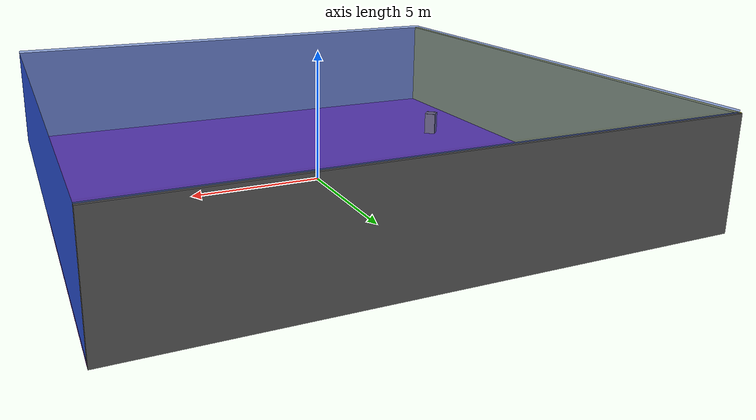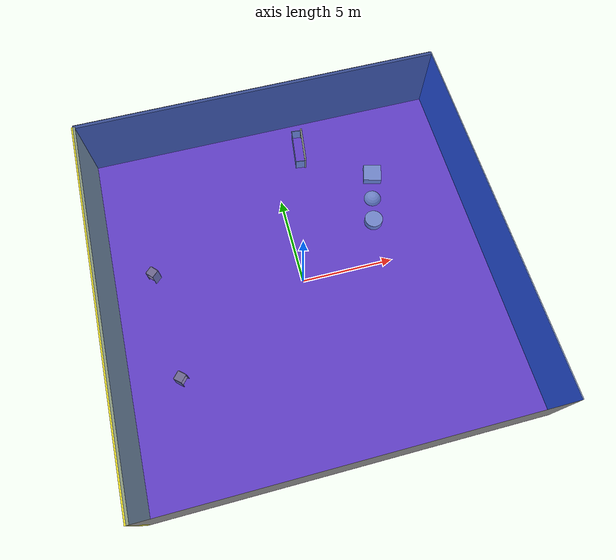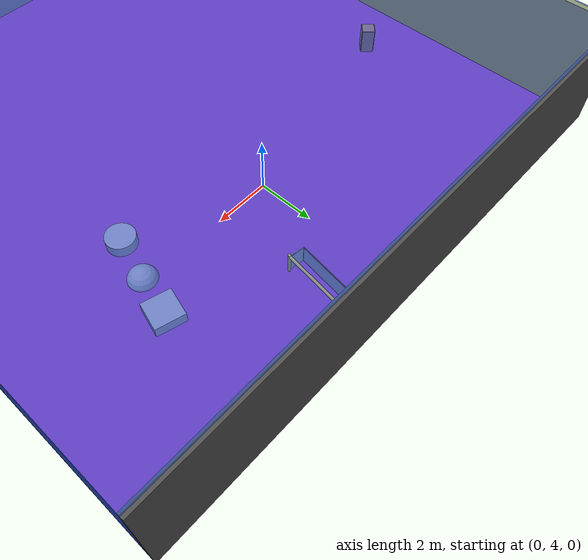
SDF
<sdf version="1.4">
 <world name="default">
  <physics type="ode">
   <max_step_size>0.001</max_step_size>
   <real_time_factor>1</real_time_factor>
   <real_time_update_rate>1000</real_time_update_rate>
   <gravity>0 0 -9.8</gravity>
  </physics>
  <scene><ambient>0.4 0.4 0.4 1</ambient><background>0.7 0.7 0.7 1</background><shadows>1</shadows></scene>
  <model name="Surrounding">
   <static>1</static>
   <link name="Ceiling">
    <collision name="Ceiling_Collision"><geometry><box><size>20 20 0.1</size></box></geometry></collision>
    <visual name="Ceiling_Visual">
     <geometry><box><size>20 20 0.1</size></box></geometry>
     <material>
      <script><uri>file://media/materials/scripts/gazebo.material</uri><name>Gazebo/BlueTransparent</name></script>
     </material>
    </visual>
    <pose>0 0 4.05 0 0 0</pose>
   </link>
   <link name="Wall_South">
    <collision name="Wall_South_Collision">
     <geometry><box><size>20 0 4</size></box></geometry>
     <pose>0 0 2 0 -0 0</pose>
    </collision>
    <visual name="Wall_South_Visual">
     <pose>0 0 2 0 -0 0</pose>
     <geometry><box><size>20 0 4</size></box></geometry>
     <material>
      <script><uri>file://media/materials/scripts/gazebo.material</uri><name>Gazebo/GreyGradientSky</name></script>
     </material>
    </visual>
    <velocity_decay><linear>0</linear><angular>0</angular></velocity_decay>
    <pose>0 -10 0 0 -0 0</pose>
   </link>
   <link name="Wall_East">
    <collision name="Wall_21_Collision">
     <geometry><box><size>20 0 4</size></box></geometry>
     <pose>0 0 2 0 -0 0</pose>
    </collision>
    <visual name="Wall_21_Visual">
     <pose>0 0 2 0 -0 0</pose>
     <geometry><box><size>20 0 4</size></box></geometry>
     <material>
      <script><uri>file://media/materials/scripts/gazebo.material</uri><name>Gazebo/BlueLaser</name></script>
     </material>
    </visual>
    <velocity_decay><linear>0</linear><angular>0</angular></velocity_decay>
    <pose>10 0 0 0 -0 1.5708</pose>
   </link>
   <link name="Wall_North">
    <collision name="Wall_22_Collision">
     <geometry><box><size>20 0.2 4</size></box></geometry>
     <pose>0 0 2 0 -0 0</pose>
    </collision>
    <visual name="Wall_22_Visual">
     <pose>0 0 2 0 -0 0</pose>
     <geometry><box><size>20 0.2 4</size></box></geometry>
     <material>
      <script><uri>file://media/materials/scripts/gazebo.material</uri><name>Gazebo/DarkGrey</name></script>
     </material>
    </visual>
    <velocity_decay><linear>0</linear><angular>0</angular></velocity_decay>
    <pose>0 10 0 0 -0 0</pose>
   </link>
   <link name="Wall_West">
    <collision name="Wall_23_Collision">
     <geometry><box><size>20 0.2 4</size></box></geometry>
     <pose>0 0 2 0 -0 0</pose>
    </collision>
    <visual name="Wall_23_Visual">
     <pose>0 0 2 0 -0 0</pose>
     <geometry><box><size>20 0.2 4</size></box></geometry>
     <material>
      <script><uri>file://media/materials/scripts/gazebo.material</uri><name>Gazebo/Yellow</name></script>
     </material>
    </visual>
    <velocity_decay><linear>0</linear><angular>0</angular></velocity_decay>
    <pose>-10 0 0 0 0 -1.5708</pose>
   </link>
   <link name="Ground_link">
    <collision name="collision">
     <pose>0 0 .05 0 -0 0</pose>
     <geometry><box><size>20 20 0.1</size></box></geometry>
    </collision>
    <visual name="visual">
     <pose>0 0 .05 0 -0 0</pose>
     <geometry><box><size>20 20 0.1</size></box></geometry>
     <material>
      <script><uri>file://media/materials/scripts/gazebo.material</uri><name>Gazebo/Purple</name></script>
     </material>
    </visual>
   </link>
   <static>1</static>
  </model>
  <spherical_coordinates>
   <surface_model>EARTH_WGS84</surface_model>
   <latitude_deg>0</latitude_deg>
   <longitude_deg>0</longitude_deg>
   <elevation>0</elevation>
   <heading_deg>0</heading_deg>
  </spherical_coordinates>
  <light name="lightball_0" type="diffuse">
   <diffuse>0.8 0.8 0.8 1</diffuse>
   <specular>0.2 0.2 0.2 1</specular>
   <attenuation>
    <range>100</range>
    <constant>0.7</constant>
    <linear>0.01</linear>
    <quadratic>0.001</quadratic>
   </attenuation>
   <direction>-0.5 0.1 -0.9</direction>
   <pose>6.40799855965 -1.87250810696 2.8022273068 0 0 0</pose>
  </light>
  <light name="lightball_1" type="diffuse">
   <diffuse>0.8 0.8 0.8 1</diffuse>
   <specular>0.2 0.2 0.2 1</specular>
   <attenuation>
    <range>100</range>
    <constant>0.7</constant>
    <linear>0.01</linear>
    <quadratic>0.001</quadratic>
   </attenuation>
   <direction>-0.5 0.1 -0.9</direction>
   <pose>0.434276459269 -1.74062192423 0.556218603178 0 0 0</pose>
  </light>
  <light name="lightball_2" type="diffuse">
   <diffuse>0.8 0.8 0.8 1</diffuse>
   <specular>0.2 0.2 0.2 1</specular>
   <attenuation>
    <range>100</range>
    <constant>0.7</constant>
    <linear>0.01</linear>
    <quadratic>0.001</quadratic>
   </attenuation>
   <direction>-0.5 0.1 -0.9</direction>
   <pose>9.44449699536 -8.03685874879 0.79028023474 0 0 0</pose>
  </light>
  <light name="lightball_3" type="diffuse">
   <diffuse>0.8 0.8 0.8 1</diffuse>
   <specular>0.2 0.2 0.2 1</specular>
   <attenuation>
    <range>100</range>
    <constant>0.7</constant>
    <linear>0.01</linear>
    <quadratic>0.001</quadratic>
   </attenuation>
   <direction>-0.5 0.1 -0.9</direction>
   <pose>-3.32795120085 -7.51751231352 2.16251643777 0 0 0</pose>
  </light>
  <light name="lightball_4" type="diffuse">
   <diffuse>0.8 0.8 0.8 1</diffuse>
   <specular>0.2 0.2 0.2 1</specular>
   <attenuation>
    <range>100</range>
    <constant>0.7</constant>
    <linear>0.01</linear>
    <quadratic>0.001</quadratic>
   </attenuation>
   <direction>-0.5 0.1 -0.9</direction>
   <pose>-9.63994282388 -9.92798983691 2.1685643911 0 0 0</pose>
  </light>
  <light name="lightball_5" type="diffuse">
   <diffuse>0.8 0.8 0.8 1</diffuse>
   <specular>0.2 0.2 0.2 1</specular>
   <attenuation>
    <range>100</range>
    <constant>0.7</constant>
    <linear>0.01</linear>
    <quadratic>0.001</quadratic>
   </attenuation>
   <direction>-0.5 0.1 -0.9</direction>
   <pose>7.25663661315 5.57341759327 1.68129184924 0 0 0</pose>
  </light>
  <include><uri>model://cabinet</uri><pose>-7.27751840507 -3.76287788013 0 0 0 2.42053856409</pose></include>
  <include><uri>model://cabinet</uri><pose>-7.73866950969 2.12707421945 0 0 0 0.755677179076</pose></include>
  <include>
   <uri>model://robocup_3Dsim_goal</uri>
   <pose>2.05900813478 7.95762225243 0 0 0 3.01309928512</pose>
  </include>
  <include>
   <uri>model://textured_shapes</uri>
   <pose>5.10726135588 3.89151196507 0 0 0 2.86987941967</pose>
  </include>
 </world>
</sdf>

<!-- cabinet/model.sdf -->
<sdf version="1.5">
  <model name="cabinet">
    <static>true</static>
    <link name="cabinet_bottom_plate">
      <inertial>
        <pose>0 0 -1 0 0 0</pose>
        <inertia>
          <ixx>2.050000</ixx>
          <ixy>0</ixy>
          <ixz>0</ixz>
          <iyy>2.050000</iyy>
          <iyz>0</iyz>
          <izz>2.050000</izz>
        </inertia>
        <mass>25.000000</mass>
      </inertial>
      <collision name="cabinet_bottom_plate_geom">
        <pose>0 0 0.010000 0 0 0</pose>
        <geometry>
          <box>
            <size>0.450000 0.450000 0.020000</size>
          </box>
        </geometry>
      </collision>
      <visual name="cabinet_bottom_plate_geom_visual">
        <pose>0 0 0.010000 0 0 0</pose>
        <geometry>
          <box>
            <size>0.450000 0.450000 0.020000</size>
          </box>
        </geometry>
        <material>
          <script>
            <uri>model://media/materials/scripts/gazebo.material</uri>
            <name>Gazebo/Wood</name>
          </script>
        </material>
      </visual>
      <collision name="cabinet_bottom_plate_geom_cabinet_back_plate">
        <pose>0.235000 0 0.510000 0 0 0</pose>
        <geometry>
          <box>
            <size>0.020000 0.450000 1.020000</size>
          </box>
        </geometry>
      </collision>
      <visual name="cabinet_bottom_plate_geom_cabinet_back_plate_visual">
        <pose>0.235000 0 0.510000 0 0 0</pose>
        <geometry>
          <box>
            <size>0.020000 0.450000 1.020000</size>
          </box>
        </geometry>
        <material>
          <script>
            <uri>model://media/materials/scripts/gazebo.material</uri>
            <name>Gazebo/Wood</name>
          </script>
        </material>
      </visual>
      <collision name="cabinet_bottom_plate_geom_cabinet_left_plate">
        <pose>0 0.235000 0.510000 0 0 0</pose>
        <geometry>
          <box>
            <size>0.450000 0.020000 1.020000</size>
          </box>
        </geometry>
      </collision>
      <visual name="cabinet_bottom_plate_geom_cabinet_left_plate_visual">
        <pose>0 0.235000 0.510000 0 0 0</pose>
        <geometry>
          <box>
            <size>0.450000 0.020000 1.020000</size>
          </box>
        </geometry>
        <material>
          <script>
            <uri>model://media/materials/scripts/gazebo.material</uri>
            <name>Gazebo/Wood</name>
          </script>
        </material>
      </visual>
      <collision name="cabinet_bottom_plate_geom_cabinet_middle_plate">
        <pose>0 0 0.510000 0 0 0</pose>
        <geometry>
          <box>
            <size>0.450000 0.450000 0.020000</size>
          </box>
        </geometry>
      </collision>
      <visual name="cabinet_bottom_plate_geom_cabinet_middle_plate_visual">
        <pose>0 0 0.510000 0 0 0</pose>
        <geometry>
          <box>
            <size>0.450000 0.450000 0.020000</size>
          </box>
        </geometry>
        <material>
          <script>
            <uri>model://media/materials/scripts/gazebo.material</uri>
            <name>Gazebo/Wood</name>
          </script>
        </material>
      </visual>
      <collision name="cabinet_bottom_plate_geom_cabinet_right_plate">
        <pose>0 -0.235000 0.510000 0 0 0</pose>
        <geometry>
          <box>
            <size>0.450000 0.020000 1.020000</size>
          </box>
        </geometry>
      </collision>
      <visual name="cabinet_bottom_plate_geom_cabinet_right_plate_visual">
        <pose>0 -0.235000 0.510000 0 0 0</pose>
        <geometry>
          <box>
            <size>0.450000 0.020000 1.020000</size>
          </box>
        </geometry>
        <material>
          <script>
            <uri>model://media/materials/scripts/gazebo.material</uri>
            <name>Gazebo/Wood</name>
          </script>
        </material>
      </visual>
      <collision name="cabinet_bottom_plate_geom_cabinet_top_plate">
        <pose>0 0 1.010000 0 0 0</pose>
        <geometry>
          <box>
            <size>0.450000 0.450000 0.020000</size>
          </box>
        </geometry>
      </collision>
      <visual name="cabinet_bottom_plate_geom_cabinet_top_plate_visual">
        <pose>0 0 1.010000 0 0 0</pose>
        <geometry>
          <box>
            <size>0.450000 0.450000 0.020000</size>
          </box>
        </geometry>
        <material>
          <script>
            <uri>model://media/materials/scripts/gazebo.material</uri>
            <name>Gazebo/Wood</name>
          </script>
        </material>
      </visual>
    </link>
  </model>
</sdf>

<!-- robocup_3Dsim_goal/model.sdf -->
<sdf version="1.5">
  <model name="robocup_3d_goal">
    <static>true</static>
    <link name="left_post">
      <pose>0 1.05 0.45 0 0 0</pose>
      <collision name="collision">
        <geometry>
          <cylinder>
            <radius>0.05</radius>
            <length>0.9</length>
          </cylinder>
        </geometry>
      </collision>
      <visual name="visual">
        <geometry>
          <cylinder>
            <radius>0.05</radius>
            <length>0.9</length>
          </cylinder>
        </geometry>
        <material>
          <script>
            <uri>file://media/materials/scripts/gazebo.material</uri>
            <name>Gazebo/ZincYellow</name>
          </script>
        </material>
      </visual>
    </link>
    <link name="left_support_horiz_lower">
      <pose>0.30 1.05 0.01 0 0 0</pose>
      <collision name="collision">
        <geometry>
          <box>
            <size>0.50 0.02 0.02</size>
          </box>
        </geometry>
      </collision>
      <visual name="visual">
        <geometry>
          <box>
            <size>0.50 0.02 0.02</size>
          </box>
        </geometry>
        <material>
          <script>
            <uri>file://media/materials/scripts/gazebo.material</uri>
            <name>Gazebo/White</name>
          </script>
        </material>
      </visual>
    </link>
    <link name="left_support_horiz_upper">
      <pose>0.30 1.05 0.79 0 0 0</pose>
      <collision name="collision">
        <geometry>
          <box>
            <size>0.50 0.02 0.02</size>
          </box>
        </geometry>
      </collision>
      <visual name="visual">
        <geometry>
          <box>
            <size>0.50 0.02 0.02</size>
          </box>
        </geometry>
        <material>
          <script>
            <uri>file://media/materials/scripts/gazebo.material</uri>
            <name>Gazebo/White</name>
          </script>
        </material>
      </visual>
    </link>
    <link name="left_support_vertical">
      <pose>0.56 1.05 0.4 0 1.5708 0</pose>
      <collision name="collision">
        <geometry>
          <box>
            <size>0.80 0.02 0.02</size>
          </box>
        </geometry>
      </collision>
      <visual name="visual">
        <geometry>
          <box>
            <size>0.80 0.02 0.02</size>
          </box>
        </geometry>
        <material>
          <script>
            <uri>file://media/materials/scripts/gazebo.material</uri>
            <name>Gazebo/White</name>
          </script>
        </material>
      </visual>
    </link>
    <link name="right_support_horiz_lower">
      <pose>0.30 -1.05 0.01 0 0 0</pose>
      <collision name="collision">
        <geometry>
          <box>
            <size>0.50 0.02 0.02</size>
          </box>
        </geometry>
      </collision>
      <visual name="visual">
        <geometry>
          <box>
            <size>0.50 0.02 0.02</size>
          </box>
        </geometry>
        <material>
          <script>
            <uri>file://media/materials/scripts/gazebo.material</uri>
            <name>Gazebo/White</name>
          </script>
        </material>
      </visual>
    </link>
    <link name="right_support_horiz_upper">
      <pose>0.30 -1.05 0.79 0 0 0</pose>
      <collision name="collision">
        <geometry>
          <box>
            <size>0.50 0.02 0.02</size>
          </box>
        </geometry>
      </collision>
      <visual name="visual">
        <geometry>
          <box>
            <size>0.50 0.02 0.02</size>
          </box>
        </geometry>
        <material>
          <script>
            <uri>file://media/materials/scripts/gazebo.material</uri>
            <name>Gazebo/White</name>
          </script>
        </material>
      </visual>
    </link>
    <link name="right_support_vertical">
      <pose>0.56 -1.05 0.4 0 1.5708 0</pose>
      <collision name="collision">
        <geometry>
          <box>
            <size>0.80 0.02 0.02</size>
          </box>
        </geometry>
      </collision>
      <visual name="visual">
        <geometry>
          <box>
            <size>0.80 0.02 0.02</size>
          </box>
        </geometry>
        <material>
          <script>
            <uri>file://media/materials/scripts/gazebo.material</uri>
            <name>Gazebo/White</name>
          </script>
        </material>
      </visual>
    </link>
    <link name="center_support_horiz_lower">
      <pose>0.56 0 0.01 0 1.5708 0</pose>
      <collision name="collision">
        <geometry>
          <box>
            <size>0.02 2.08 0.02</size>
          </box>
        </geometry>
      </collision>
      <visual name="visual">
        <geometry>
          <box>
            <size>0.02 2.08 0.02</size>
          </box>
        </geometry>
        <material>
          <script>
            <uri>file://media/materials/scripts/gazebo.material</uri>
            <name>Gazebo/White</name>
          </script>
        </material>
      </visual>
    </link>
    <link name="center_support_horiz_upper">
      <pose>0.56 0 0.79 0 1.5708 0</pose>
      <collision name="collision">
        <geometry>
          <box>
            <size>0.02 2.08 0.02</size>
          </box>
        </geometry>
      </collision>
      <visual name="visual">
        <geometry>
          <box>
            <size>0.02 2.08 0.02</size>
          </box>
        </geometry>
        <material>
          <script>
            <uri>file://media/materials/scripts/gazebo.material</uri>
            <name>Gazebo/White</name>
          </script>
        </material>
      </visual>
    </link>
    <link name="right_post">
      <pose>0 -1.05 0.45 0 0 0</pose>
      <collision name="collision">
        <geometry>
          <cylinder>
            <radius>0.05</radius>
            <length>0.9</length>
          </cylinder>
        </geometry>
      </collision>
      <visual name="visual">
        <geometry>
          <cylinder>
            <radius>0.05</radius>
            <length>0.9</length>
          </cylinder>
        </geometry>
        <material>
          <script>
            <uri>file://media/materials/scripts/gazebo.material</uri>
            <name>Gazebo/ZincYellow</name>
          </script>
        </material>
      </visual>
    </link>
    <link name="crossbar">
      <pose>0 0 0.85 1.57 1.57 0</pose>
      <collision name="collision">
        <geometry>
          <cylinder>
            <radius>0.05</radius>
            <length>2.0</length>
          </cylinder>
        </geometry>
      </collision>
      <visual name="visual">
        <geometry>
          <cylinder>
            <radius>0.05</radius>
            <length>2.0</length>
          </cylinder>
        </geometry>
        <material>
          <script>
            <uri>file://media/materials/scripts/gazebo.material</uri>
            <name>Gazebo/ZincYellow</name>
          </script>
        </material>
      </visual>
    </link>
    <link name="center_net">
      <pose>0.56 0 0.40 0 0 0</pose>
      <collision name="collision">
        <geometry>
          <box>
            <size>0.01 2.1 0.80</size>
          </box>
        </geometry>
      </collision>
      <visual name="visual">
        <geometry>
          <box>
            <size>0.01 2.1 0.80</size>
          </box>
        </geometry>
        <material>
          <script>
            <uri>model://../model_source/models/robocup09_spl_field/materials/scripts/</uri>
            <uri>model://../model_source/models/robocup09_spl_field/materials/textures/</uri>
            <name>RoboCup/Net</name>
          </script>
        </material>
      </visual>
    </link>
    <link name="left_net">
      <pose>0.30 1.05 0.40 0 0 0</pose>
      <collision name="collision">
        <geometry>
          <box>
            <size>0.50 0.01 0.76</size>
          </box>
        </geometry>
      </collision>
      <visual name="visual">
        <geometry>
          <box>
            <size>0.50 0.01 0.76</size>
          </box>
        </geometry>
        <material>
          <script>
            <uri>model://../model_source/models/robocup09_spl_field/materials/scripts/</uri>
            <uri>model://../model_source/models/robocup09_spl_field/materials/textures/</uri>
            <name>RoboCup/Net</name>
          </script>
        </material>
      </visual>
    </link>
    <link name="right_net">
      <pose>0.30 -1.05 0.40 0 0 0</pose>
      <collision name="collision">
        <geometry>
          <box>
            <size>0.50 0.01 0.76</size>
          </box>
        </geometry>
      </collision>
      <visual name="visual">
        <geometry>
          <box>
            <size>0.50 0.01 0.76</size>
          </box>
        </geometry>
        <material>
          <script>
            <uri>model://../model_source/models/robocup09_spl_field/materials/scripts/</uri>
            <uri>model://../model_source/models/robocup09_spl_field/materials/textures/</uri>
            <name>RoboCup/Net</name>
          </script>
        </material>
      </visual>
    </link>
  </model>
</sdf>

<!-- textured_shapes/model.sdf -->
<sdf version="1.6">
  <model name="textured_shapes">
    <pose>0 0 0.5 0 0 0</pose>
    <link name="box">
      <pose>0 -1.5 0 0 0 0</pose>
      <collision name="collision">
        <geometry>
          <box>
            <size>1 1 1</size>
          </box>
        </geometry>
      </collision>
      <visual name="visual">
        <geometry>
          <box>
            <size>1 1 1</size>
          </box>
        </geometry>
        <material>
          <script>
            <uri>model://../model_source/models/textured_shapes/materials/scripts</uri>
            <uri>model://../model_source/models/textured_shapes/materials/textures</uri>
            <name>TexturedShape/Squares</name>
          </script>
        </material>
      </visual>
    </link>
    <link name="sphere">
      <collision name="collision">
        <geometry>
          <sphere>
            <radius>0.5</radius>
          </sphere>
        </geometry>
      </collision>
      <visual name="visual">
        <geometry>
          <sphere>
            <radius>0.5</radius>
          </sphere>
        </geometry>
        <material>
          <script>
            <uri>model://../model_source/models/textured_shapes/materials/scripts</uri>
            <uri>model://../model_source/models/textured_shapes/materials/textures</uri>
            <name>TexturedShape/Squares</name>
          </script>
        </material>
      </visual>
    </link>
    <link name="cylinder">
      <pose>0 1.5 0 0 0 0</pose>
      <collision name="collision">
        <geometry>
          <cylinder>
            <radius>0.5</radius>
            <length>1</length>
          </cylinder>
        </geometry>
      </collision>
      <visual name="visual">
        <geometry>
          <cylinder>
            <radius>0.5</radius>
            <length>1</length>
          </cylinder>
        </geometry>
        <material>
          <script>
            <uri>model://../model_source/models/textured_shapes/materials/scripts</uri>
            <uri>model://../model_source/models/textured_shapes/materials/textures</uri>
            <name>TexturedShape/Squares</name>
          </script>
        </material>
      </visual>
    </link>
  </model>
</sdf>
